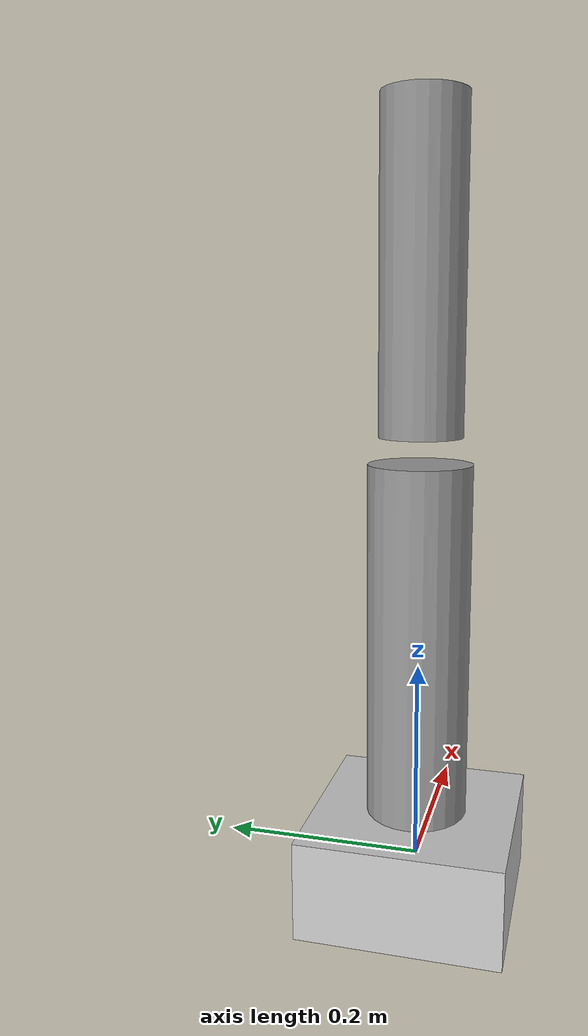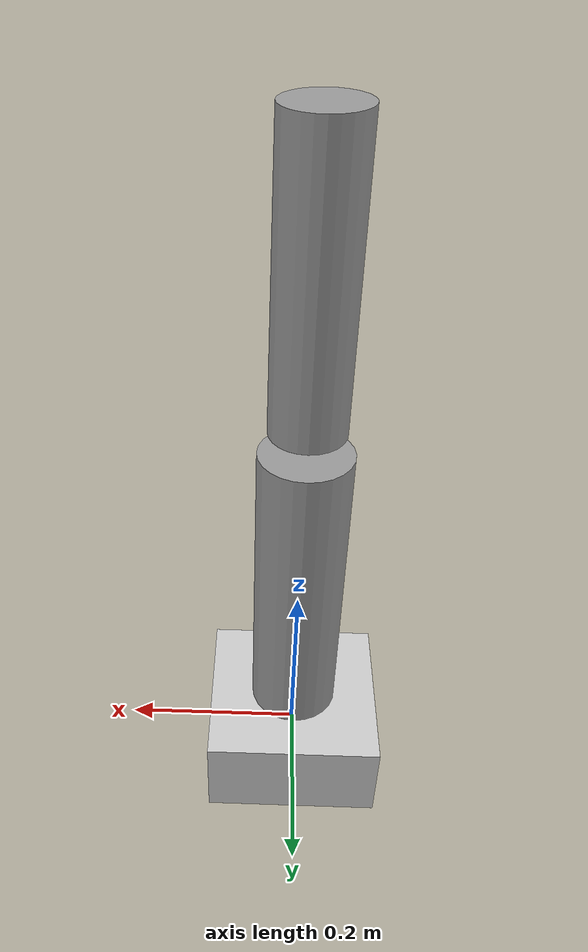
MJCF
<mujoco model="simple_arm">
  <option gravity="0 0 -9.81"/>

  <worldbody>
    <body name="base_link" pos="0 0 0">
      <geom name="base" type="box" size="0.1 0.1 0.05" rgba="0.8 0.8 0.8 1"/>

      <body name="link1" pos="0 0 0.1">
        <joint name="joint1" type="hinge" axis="0 0 1" range="-3.14159 3.14159"/>
        <geom name="link1_geom" type="cylinder" size="0.05 0.2" pos="0 0 0.1" rgba="0.6 0.6 0.6 1"/>

        <body name="link2" pos="0 0 0.4">
          <joint name="joint2" type="hinge" axis="0 1 0" range="-1.57 1.57"/>
          <geom name="link2_geom" type="cylinder" size="0.04 0.15" pos="0 0 0.075" rgba="0.6 0.6 0.6 1"/>
        </body>
      </body>
    </body>
  </worldbody>

  <actuator>
    <motor name="joint1" joint="joint1" ctrlrange="-5 5" gear="10"/>
    <motor name="joint2" joint="joint2" ctrlrange="-5 5" gear="10"/>
  </actuator>
</mujoco>
